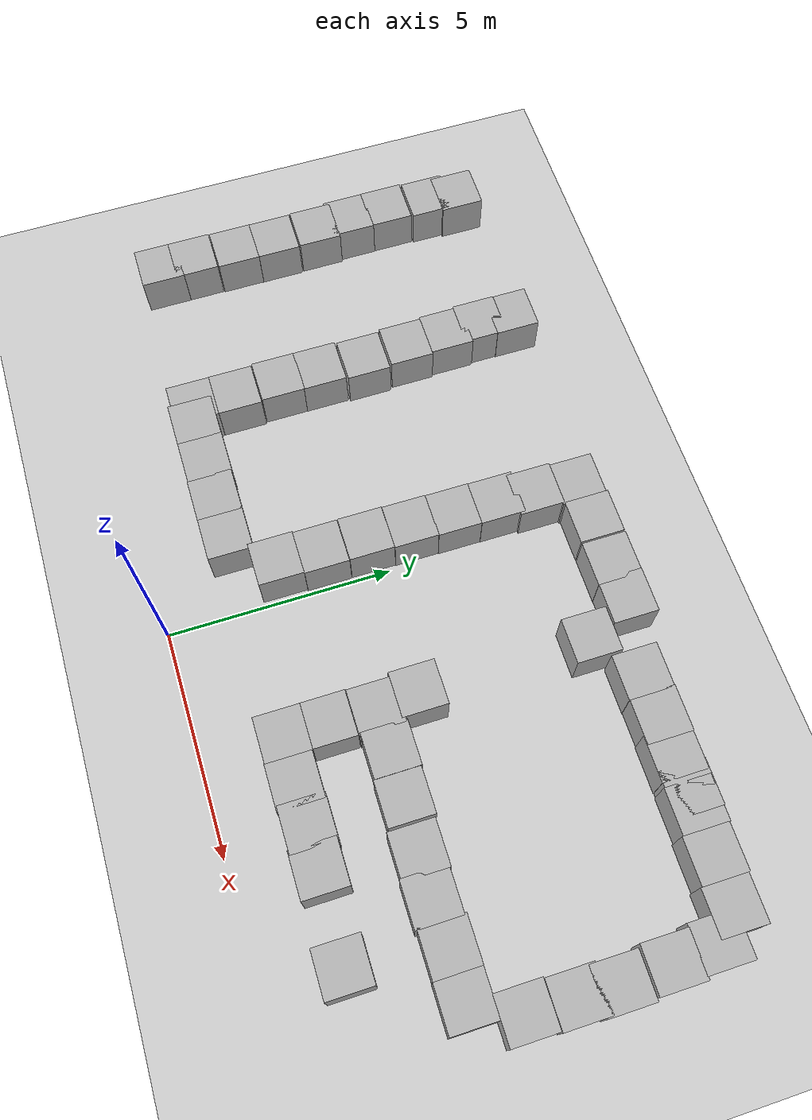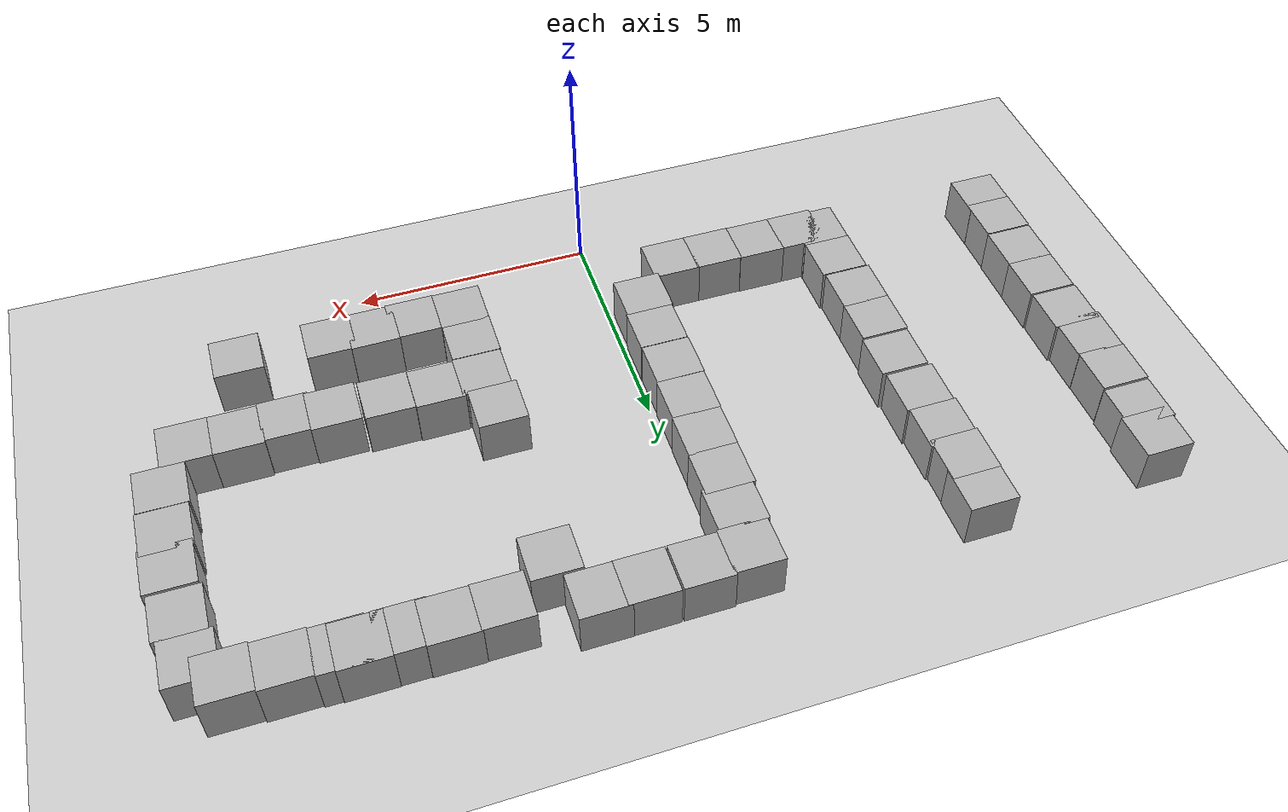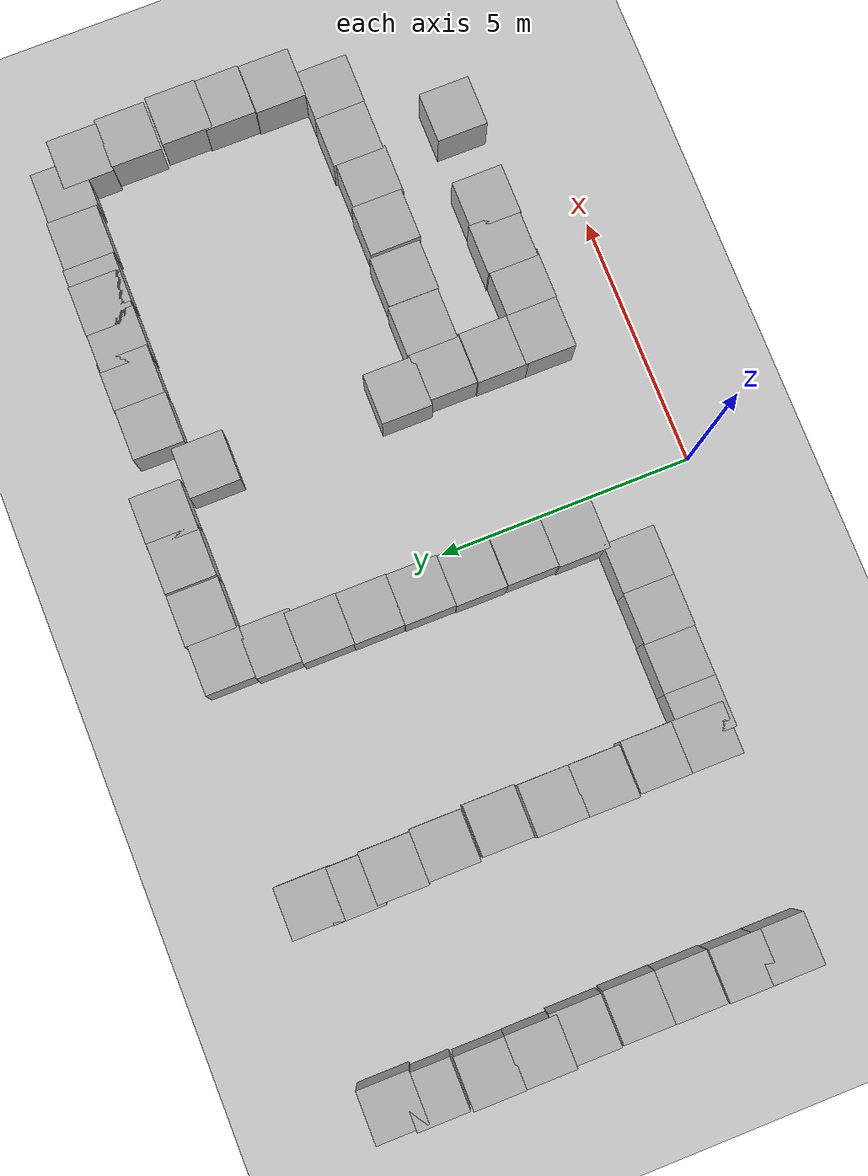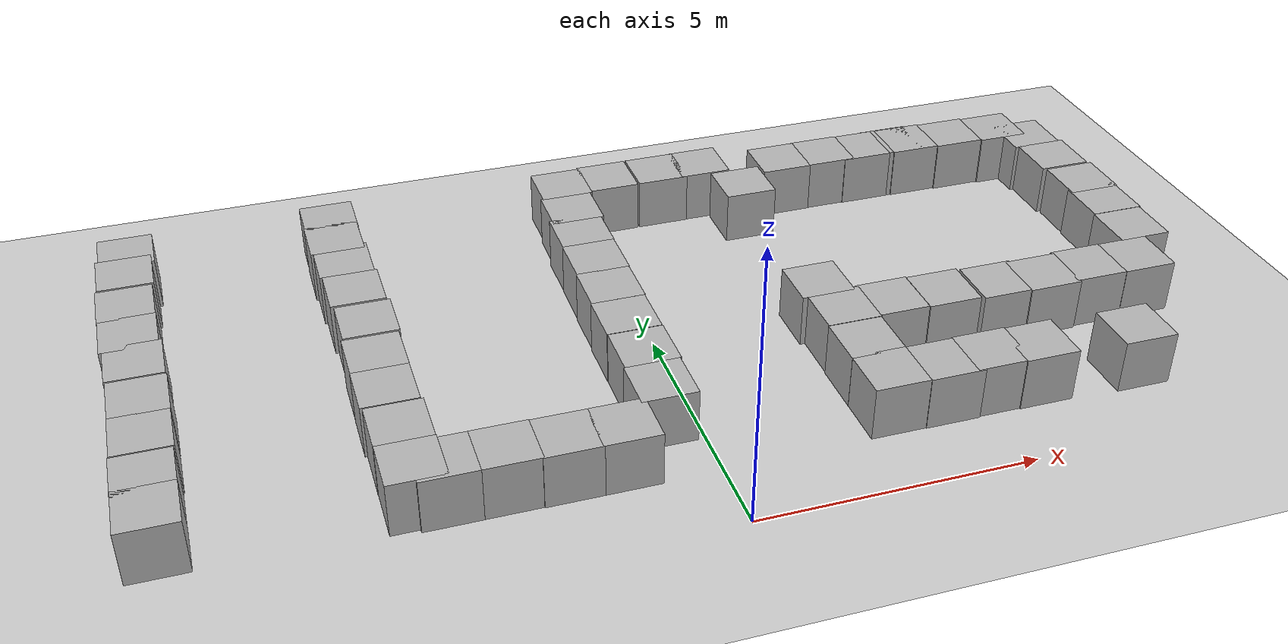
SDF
<sdf version="1.9">
 <world name="empty">
  <model name="ground_plane">
   <static>true</static>
   <link name="link">
    <collision name="collision">
     <geometry><plane><normal>0 0 1</normal><size>100 100</size></plane></geometry>
    </collision>
    <visual name="visual">
     <geometry><plane><normal>0 0 1</normal><size>100 100</size></plane></geometry>
     <material>
      <ambient>0.8 0.8 0.8 1</ambient>
      <diffuse>0.8 0.8 0.8 1</diffuse>
      <specular>0.8 0.8 0.8 1</specular>
     </material>
    </visual>
    <inertial>
     <mass>1</mass>
     <inertia><ixx>1</ixx><ixy>0</ixy><ixz>0</ixz><iyy>1</iyy><iyz>0</iyz><izz>1</izz></inertia>
    </inertial>
   </link>
  </model>
  <model name="box_3_1">
   <pose>-4.46258 1.78849 0.5 0 -0 0</pose>
   <link name="box_link">
    <inertial>
     <inertia><ixx>0.16666</ixx><ixy>0</ixy><ixz>0</ixz><iyy>0.16666</iyy><iyz>0</iyz><izz>0.16666</izz></inertia>
     <mass>1</mass>
    </inertial>
    <collision name="box_collision"><geometry><box><size>1 1 1</size></box></geometry></collision>
    <visual name="box_visual">
     <geometry><box><size>1 1 1</size></box></geometry>
     <material>
      <ambient>0.3 0.3 0.3 1</ambient>
      <diffuse>0.7 0.7 0.7 1</diffuse>
      <specular>1 1 1 1</specular>
     </material>
    </visual>
   </link>
   <static>false</static>
  </model>
  <model name="box_4">
   <pose>-3.47193 1.7902 0.5 0 -0 0</pose>
   <link name="box_link">
    <inertial>
     <inertia><ixx>0.16666</ixx><ixy>0</ixy><ixz>0</ixz><iyy>0.16666</iyy><iyz>0</iyz><izz>0.16666</izz></inertia>
     <mass>1</mass>
    </inertial>
    <collision name="box_collision"><geometry><box><size>1 1 1</size></box></geometry></collision>
    <visual name="box_visual">
     <geometry><box><size>1 1 1</size></box></geometry>
     <material>
      <ambient>0.3 0.3 0.3 1</ambient>
      <diffuse>0.7 0.7 0.7 1</diffuse>
      <specular>1 1 1 1</specular>
     </material>
    </visual>
   </link>
   <static>false</static>
  </model>
  <model name="box_5">
   <pose>-2.5012 1.77664 0.5 0 -0 0</pose>
   <link name="box_link">
    <inertial>
     <inertia><ixx>0.16666</ixx><ixy>0</ixy><ixz>0</ixz><iyy>0.16666</iyy><iyz>0</iyz><izz>0.16666</izz></inertia>
     <mass>1</mass>
    </inertial>
    <collision name="box_collision"><geometry><box><size>1 1 1</size></box></geometry></collision>
    <visual name="box_visual">
     <geometry><box><size>1 1 1</size></box></geometry>
     <material>
      <ambient>0.3 0.3 0.3 1</ambient>
      <diffuse>0.7 0.7 0.7 1</diffuse>
      <specular>1 1 1 1</specular>
     </material>
    </visual>
   </link>
   <static>false</static>
  </model>
  <model name="box_6">
   <pose>-1.52755 1.77711 0.5 0 -0 0</pose>
   <link name="box_link">
    <inertial>
     <inertia><ixx>0.16666</ixx><ixy>0</ixy><ixz>0</ixz><iyy>0.16666</iyy><iyz>0</iyz><izz>0.16666</izz></inertia>
     <mass>1</mass>
    </inertial>
    <collision name="box_collision"><geometry><box><size>1 1 1</size></box></geometry></collision>
    <visual name="box_visual">
     <geometry><box><size>1 1 1</size></box></geometry>
     <material>
      <ambient>0.3 0.3 0.3 1</ambient>
      <diffuse>0.7 0.7 0.7 1</diffuse>
      <specular>1 1 1 1</specular>
     </material>
    </visual>
   </link>
   <static>false</static>
  </model>
  <model name="box_14">
   <pose>-0.62645 2.66518 0.5 0 -0 0</pose>
   <link name="box_link">
    <inertial>
     <inertia><ixx>0.16666</ixx><ixy>0</ixy><ixz>0</ixz><iyy>0.16666</iyy><iyz>0</iyz><izz>0.16666</izz></inertia>
     <mass>1</mass>
    </inertial>
    <collision name="box_collision"><geometry><box><size>1 1 1</size></box></geometry></collision>
    <visual name="box_visual">
     <geometry><box><size>1 1 1</size></box></geometry>
     <material>
      <ambient>0.3 0.3 0.3 1</ambient>
      <diffuse>0.7 0.7 0.7 1</diffuse>
      <specular>1 1 1 1</specular>
     </material>
    </visual>
   </link>
   <static>false</static>
  </model>
  <model name="box_15">
   <pose>-0.602355 3.6627 0.5 0 -0 0</pose>
   <link name="box_link">
    <inertial>
     <inertia><ixx>0.16666</ixx><ixy>0</ixy><ixz>0</ixz><iyy>0.16666</iyy><iyz>0</iyz><izz>0.16666</izz></inertia>
     <mass>1</mass>
    </inertial>
    <collision name="box_collision"><geometry><box><size>1 1 1</size></box></geometry></collision>
    <visual name="box_visual">
     <geometry><box><size>1 1 1</size></box></geometry>
     <material>
      <ambient>0.3 0.3 0.3 1</ambient>
      <diffuse>0.7 0.7 0.7 1</diffuse>
      <specular>1 1 1 1</specular>
     </material>
    </visual>
   </link>
   <static>false</static>
  </model>
  <model name="box_16">
   <pose>-0.610927 4.67319 0.5 0 -0 0</pose>
   <link name="box_link">
    <inertial>
     <inertia><ixx>0.16666</ixx><ixy>0</ixy><ixz>0</ixz><iyy>0.16666</iyy><iyz>0</iyz><izz>0.16666</izz></inertia>
     <mass>1</mass>
    </inertial>
    <collision name="box_collision"><geometry><box><size>1 1 1</size></box></geometry></collision>
    <visual name="box_visual">
     <geometry><box><size>1 1 1</size></box></geometry>
     <material>
      <ambient>0.3 0.3 0.3 1</ambient>
      <diffuse>0.7 0.7 0.7 1</diffuse>
      <specular>1 1 1 1</specular>
     </material>
    </visual>
   </link>
   <static>false</static>
  </model>
  <model name="box_17">
   <pose>-0.595787 5.67413 0.5 0 -0 0</pose>
   <link name="box_link">
    <inertial>
     <inertia><ixx>0.16666</ixx><ixy>0</ixy><ixz>0</ixz><iyy>0.16666</iyy><iyz>0</iyz><izz>0.16666</izz></inertia>
     <mass>1</mass>
    </inertial>
    <collision name="box_collision"><geometry><box><size>1 1 1</size></box></geometry></collision>
    <visual name="box_visual">
     <geometry><box><size>1 1 1</size></box></geometry>
     <material>
      <ambient>0.3 0.3 0.3 1</ambient>
      <diffuse>0.7 0.7 0.7 1</diffuse>
      <specular>1 1 1 1</specular>
     </material>
    </visual>
   </link>
   <static>false</static>
  </model>
  <model name="box_18">
   <pose>-0.583933 6.66382 0.5 0 -0 0</pose>
   <link name="box_link">
    <inertial>
     <inertia><ixx>0.16666</ixx><ixy>0</ixy><ixz>0</ixz><iyy>0.16666</iyy><iyz>0</iyz><izz>0.16666</izz></inertia>
     <mass>1</mass>
    </inertial>
    <collision name="box_collision"><geometry><box><size>1 1 1</size></box></geometry></collision>
    <visual name="box_visual">
     <geometry><box><size>1 1 1</size></box></geometry>
     <material>
      <ambient>0.3 0.3 0.3 1</ambient>
      <diffuse>0.7 0.7 0.7 1</diffuse>
      <specular>1 1 1 1</specular>
     </material>
    </visual>
   </link>
   <static>false</static>
  </model>
  <model name="box_19">
   <pose>-0.575678 7.6423 0.5 0 -0 0</pose>
   <link name="box_link">
    <inertial>
     <inertia><ixx>0.16666</ixx><ixy>0</ixy><ixz>0</ixz><iyy>0.16666</iyy><iyz>0</iyz><izz>0.16666</izz></inertia>
     <mass>1</mass>
    </inertial>
    <collision name="box_collision"><geometry><box><size>1 1 1</size></box></geometry></collision>
    <visual name="box_visual">
     <geometry><box><size>1 1 1</size></box></geometry>
     <material>
      <ambient>0.3 0.3 0.3 1</ambient>
      <diffuse>0.7 0.7 0.7 1</diffuse>
      <specular>1 1 1 1</specular>
     </material>
    </visual>
   </link>
   <static>false</static>
  </model>
  <model name="box_27">
   <pose>3.11958 1.81014 0.5 0 -0 0</pose>
   <link name="box_link">
    <inertial>
     <inertia><ixx>0.16666</ixx><ixy>0</ixy><ixz>0</ixz><iyy>0.16666</iyy><iyz>0</iyz><izz>0.16666</izz></inertia>
     <mass>1</mass>
    </inertial>
    <collision name="box_collision"><geometry><box><size>1 1 1</size></box></geometry></collision>
    <visual name="box_visual">
     <geometry><box><size>1 1 1</size></box></geometry>
     <material>
      <ambient>0.3 0.3 0.3 1</ambient>
      <diffuse>0.7 0.7 0.7 1</diffuse>
      <specular>1 1 1 1</specular>
     </material>
    </visual>
   </link>
   <static>false</static>
  </model>
  <model name="box_28">
   <pose>3.11744 2.76434 0.5 0 -0 0</pose>
   <link name="box_link">
    <inertial>
     <inertia><ixx>0.16666</ixx><ixy>0</ixy><ixz>0</ixz><iyy>0.16666</iyy><iyz>0</iyz><izz>0.16666</izz></inertia>
     <mass>1</mass>
    </inertial>
    <collision name="box_collision"><geometry><box><size>1 1 1</size></box></geometry></collision>
    <visual name="box_visual">
     <geometry><box><size>1 1 1</size></box></geometry>
     <material>
      <ambient>0.3 0.3 0.3 1</ambient>
      <diffuse>0.7 0.7 0.7 1</diffuse>
      <specular>1 1 1 1</specular>
     </material>
    </visual>
   </link>
   <static>false</static>
  </model>
  <model name="box_29">
   <pose>3.13123 3.77565 0.5 0 -0 0</pose>
   <link name="box_link">
    <inertial>
     <inertia><ixx>0.16666</ixx><ixy>0</ixy><ixz>0</ixz><iyy>0.16666</iyy><iyz>0</iyz><izz>0.16666</izz></inertia>
     <mass>1</mass>
    </inertial>
    <collision name="box_collision"><geometry><box><size>1 1 1</size></box></geometry></collision>
    <visual name="box_visual">
     <geometry><box><size>1 1 1</size></box></geometry>
     <material>
      <ambient>0.3 0.3 0.3 1</ambient>
      <diffuse>0.7 0.7 0.7 1</diffuse>
      <specular>1 1 1 1</specular>
     </material>
    </visual>
   </link>
   <static>false</static>
  </model>
  <model name="box_30">
   <pose>3.02328 8.49449 0.5 0 -0 0</pose>
   <link name="box_link">
    <inertial>
     <inertia><ixx>0.16666</ixx><ixy>0</ixy><ixz>0</ixz><iyy>0.16666</iyy><iyz>0</iyz><izz>0.16666</izz></inertia>
     <mass>1</mass>
    </inertial>
    <collision name="box_collision"><geometry><box><size>1 1 1</size></box></geometry></collision>
    <visual name="box_visual">
     <geometry><box><size>1 1 1</size></box></geometry>
     <material>
      <ambient>0.3 0.3 0.3 1</ambient>
      <diffuse>0.7 0.7 0.7 1</diffuse>
      <specular>1 1 1 1</specular>
     </material>
    </visual>
   </link>
   <static>false</static>
  </model>
  <model name="box_31">
   <pose>-0.51947 8.52309 0.5 0 -0 0</pose>
   <link name="box_link">
    <inertial>
     <inertia><ixx>0.16666</ixx><ixy>0</ixy><ixz>0</ixz><iyy>0.16666</iyy><iyz>0</iyz><izz>0.16666</izz></inertia>
     <mass>1</mass>
    </inertial>
    <collision name="box_collision"><geometry><box><size>1 1 1</size></box></geometry></collision>
    <visual name="box_visual">
     <geometry><box><size>1 1 1</size></box></geometry>
     <material>
      <ambient>0.3 0.3 0.3 1</ambient>
      <diffuse>0.7 0.7 0.7 1</diffuse>
      <specular>1 1 1 1</specular>
     </material>
    </visual>
   </link>
   <static>false</static>
  </model>
  <model name="box_32">
   <pose>-0.473583 9.48528 0.5 0 -0 0</pose>
   <link name="box_link">
    <inertial>
     <inertia><ixx>0.16666</ixx><ixy>0</ixy><ixz>0</ixz><iyy>0.16666</iyy><iyz>0</iyz><izz>0.16666</izz></inertia>
     <mass>1</mass>
    </inertial>
    <collision name="box_collision"><geometry><box><size>1 1 1</size></box></geometry></collision>
    <visual name="box_visual">
     <geometry><box><size>1 1 1</size></box></geometry>
     <material>
      <ambient>0.3 0.3 0.3 1</ambient>
      <diffuse>0.7 0.7 0.7 1</diffuse>
      <specular>1 1 1 1</specular>
     </material>
    </visual>
   </link>
   <static>false</static>
  </model>
  <model name="box_33">
   <pose>0.491718 9.52437 0.5 0 -0 0</pose>
   <link name="box_link">
    <inertial>
     <inertia><ixx>0.16666</ixx><ixy>0</ixy><ixz>0</ixz><iyy>0.16666</iyy><iyz>0</iyz><izz>0.16666</izz></inertia>
     <mass>1</mass>
    </inertial>
    <collision name="box_collision"><geometry><box><size>1 1 1</size></box></geometry></collision>
    <visual name="box_visual">
     <geometry><box><size>1 1 1</size></box></geometry>
     <material>
      <ambient>0.3 0.3 0.3 1</ambient>
      <diffuse>0.7 0.7 0.7 1</diffuse>
      <specular>1 1 1 1</specular>
     </material>
    </visual>
   </link>
   <static>false</static>
  </model>
  <model name="box_34">
   <pose>1.52596 9.52964 0.5 0 -0 0</pose>
   <link name="box_link">
    <inertial>
     <inertia><ixx>0.16666</ixx><ixy>0</ixy><ixz>0</ixz><iyy>0.16666</iyy><iyz>0</iyz><izz>0.16666</izz></inertia>
     <mass>1</mass>
    </inertial>
    <collision name="box_collision"><geometry><box><size>1 1 1</size></box></geometry></collision>
    <visual name="box_visual">
     <geometry><box><size>1 1 1</size></box></geometry>
     <material>
      <ambient>0.3 0.3 0.3 1</ambient>
      <diffuse>0.7 0.7 0.7 1</diffuse>
      <specular>1 1 1 1</specular>
     </material>
    </visual>
   </link>
   <static>false</static>
  </model>
  <model name="box_35">
   <pose>2.43308 9.5376 0.5 0 -0 0</pose>
   <link name="box_link">
    <inertial>
     <inertia><ixx>0.16666</ixx><ixy>0</ixy><ixz>0</ixz><iyy>0.16666</iyy><iyz>0</iyz><izz>0.16666</izz></inertia>
     <mass>1</mass>
    </inertial>
    <collision name="box_collision"><geometry><box><size>1 1 1</size></box></geometry></collision>
    <visual name="box_visual">
     <geometry><box><size>1 1 1</size></box></geometry>
     <material>
      <ambient>0.3 0.3 0.3 1</ambient>
      <diffuse>0.7 0.7 0.7 1</diffuse>
      <specular>1 1 1 1</specular>
     </material>
    </visual>
   </link>
   <static>false</static>
  </model>
  <model name="box_53">
   <pose>4.11919 1.79761 0.5 0 -0 0</pose>
   <link name="box_link">
    <inertial>
     <inertia><ixx>0.16666</ixx><ixy>0</ixy><ixz>0</ixz><iyy>0.16666</iyy><iyz>0</iyz><izz>0.16666</izz></inertia>
     <mass>1</mass>
    </inertial>
    <collision name="box_collision"><geometry><box><size>1 1 1</size></box></geometry></collision>
    <visual name="box_visual">
     <geometry><box><size>1 1 1</size></box></geometry>
     <material>
      <ambient>0.3 0.3 0.3 1</ambient>
      <diffuse>0.7 0.7 0.7 1</diffuse>
      <specular>1 1 1 1</specular>
     </material>
    </visual>
   </link>
   <static>false</static>
  </model>
  <model name="box_54">
   <pose>4.99012 1.81929 0.5 0 -0 0</pose>
   <link name="box_link">
    <inertial>
     <inertia><ixx>0.16666</ixx><ixy>0</ixy><ixz>0</ixz><iyy>0.16666</iyy><iyz>0</iyz><izz>0.16666</izz></inertia>
     <mass>1</mass>
    </inertial>
    <collision name="box_collision"><geometry><box><size>1 1 1</size></box></geometry></collision>
    <visual name="box_visual">
     <geometry><box><size>1 1 1</size></box></geometry>
     <material>
      <ambient>0.3 0.3 0.3 1</ambient>
      <diffuse>0.7 0.7 0.7 1</diffuse>
      <specular>1 1 1 1</specular>
     </material>
    </visual>
   </link>
   <static>false</static>
  </model>
  <model name="box_55">
   <pose>5.88812 1.79879 0.5 0 -0 0</pose>
   <link name="box_link">
    <inertial>
     <inertia><ixx>0.16666</ixx><ixy>0</ixy><ixz>0</ixz><iyy>0.16666</iyy><iyz>0</iyz><izz>0.16666</izz></inertia>
     <mass>1</mass>
    </inertial>
    <collision name="box_collision"><geometry><box><size>1 1 1</size></box></geometry></collision>
    <visual name="box_visual">
     <geometry><box><size>1 1 1</size></box></geometry>
     <material>
      <ambient>0.3 0.3 0.3 1</ambient>
      <diffuse>0.7 0.7 0.7 1</diffuse>
      <specular>1 1 1 1</specular>
     </material>
    </visual>
   </link>
   <static>false</static>
  </model>
  <model name="box_57">
   <pose>7.74781 1.736 0.5 0 -0 0</pose>
   <link name="box_link">
    <inertial>
     <inertia><ixx>0.16666</ixx><ixy>0</ixy><ixz>0</ixz><iyy>0.16666</iyy><iyz>0</iyz><izz>0.16666</izz></inertia>
     <mass>1</mass>
    </inertial>
    <collision name="box_collision"><geometry><box><size>1 1 1</size></box></geometry></collision>
    <visual name="box_visual">
     <geometry><box><size>1 1 1</size></box></geometry>
     <material>
      <ambient>0.3 0.3 0.3 1</ambient>
      <diffuse>0.7 0.7 0.7 1</diffuse>
      <specular>1 1 1 1</specular>
     </material>
    </visual>
   </link>
   <static>false</static>
  </model>
  <model name="box_63">
   <pose>4.07342 3.80274 0.5 0 -0 0</pose>
   <link name="box_link">
    <inertial>
     <inertia><ixx>0.16666</ixx><ixy>0</ixy><ixz>0</ixz><iyy>0.16666</iyy><iyz>0</iyz><izz>0.16666</izz></inertia>
     <mass>1</mass>
    </inertial>
    <collision name="box_collision"><geometry><box><size>1 1 1</size></box></geometry></collision>
    <visual name="box_visual">
     <geometry><box><size>1 1 1</size></box></geometry>
     <material>
      <ambient>0.3 0.3 0.3 1</ambient>
      <diffuse>0.7 0.7 0.7 1</diffuse>
      <specular>1 1 1 1</specular>
     </material>
    </visual>
   </link>
   <static>false</static>
  </model>
  <model name="box_64">
   <pose>5.07651 3.77821 0.5 0 -0 0</pose>
   <link name="box_link">
    <inertial>
     <inertia><ixx>0.16666</ixx><ixy>0</ixy><ixz>0</ixz><iyy>0.16666</iyy><iyz>0</iyz><izz>0.16666</izz></inertia>
     <mass>1</mass>
    </inertial>
    <collision name="box_collision"><geometry><box><size>1 1 1</size></box></geometry></collision>
    <visual name="box_visual">
     <geometry><box><size>1 1 1</size></box></geometry>
     <material>
      <ambient>0.3 0.3 0.3 1</ambient>
      <diffuse>0.7 0.7 0.7 1</diffuse>
      <specular>1 1 1 1</specular>
     </material>
    </visual>
   </link>
   <static>false</static>
  </model>
  <model name="box_65">
   <pose>4.07663 9.21213 0.5 0 -0 0</pose>
   <link name="box_link">
    <inertial>
     <inertia><ixx>0.16666</ixx><ixy>0</ixy><ixz>0</ixz><iyy>0.16666</iyy><iyz>0</iyz><izz>0.16666</izz></inertia>
     <mass>1</mass>
    </inertial>
    <collision name="box_collision"><geometry><box><size>1 1 1</size></box></geometry></collision>
    <visual name="box_visual">
     <geometry><box><size>1 1 1</size></box></geometry>
     <material>
      <ambient>0.3 0.3 0.3 1</ambient>
      <diffuse>0.7 0.7 0.7 1</diffuse>
      <specular>1 1 1 1</specular>
     </material>
    </visual>
   </link>
   <static>false</static>
  </model>
  <model name="box_66">
   <pose>5.04602 9.2236 0.5 0 -0 0</pose>
   <link name="box_link">
    <inertial>
     <inertia><ixx>0.16666</ixx><ixy>0</ixy><ixz>0</ixz><iyy>0.16666</iyy><iyz>0</iyz><izz>0.16666</izz></inertia>
     <mass>1</mass>
    </inertial>
    <collision name="box_collision"><geometry><box><size>1 1 1</size></box></geometry></collision>
    <visual name="box_visual">
     <geometry><box><size>1 1 1</size></box></geometry>
     <material>
      <ambient>0.3 0.3 0.3 1</ambient>
      <diffuse>0.7 0.7 0.7 1</diffuse>
      <specular>1 1 1 1</specular>
     </material>
    </visual>
   </link>
   <static>false</static>
  </model>
  <model name="box_67">
   <pose>5.84829 9.2067 0.5 0 -0 0</pose>
   <link name="box_link">
    <inertial>
     <inertia><ixx>0.16666</ixx><ixy>0</ixy><ixz>0</ixz><iyy>0.16666</iyy><iyz>0</iyz><izz>0.16666</izz></inertia>
     <mass>1</mass>
    </inertial>
    <collision name="box_collision"><geometry><box><size>1 1 1</size></box></geometry></collision>
    <visual name="box_visual">
     <geometry><box><size>1 1 1</size></box></geometry>
     <material>
      <ambient>0.3 0.3 0.3 1</ambient>
      <diffuse>0.7 0.7 0.7 1</diffuse>
      <specular>1 1 1 1</specular>
     </material>
    </visual>
   </link>
   <static>false</static>
  </model>
  <model name="box_68">
   <pose>6.12743 3.73131 0.5 0 -0 0</pose>
   <link name="box_link">
    <inertial>
     <inertia><ixx>0.16666</ixx><ixy>0</ixy><ixz>0</ixz><iyy>0.16666</iyy><iyz>0</iyz><izz>0.16666</izz></inertia>
     <mass>1</mass>
    </inertial>
    <collision name="box_collision"><geometry><box><size>1 1 1</size></box></geometry></collision>
    <visual name="box_visual">
     <geometry><box><size>1 1 1</size></box></geometry>
     <material>
      <ambient>0.3 0.3 0.3 1</ambient>
      <diffuse>0.7 0.7 0.7 1</diffuse>
      <specular>1 1 1 1</specular>
     </material>
    </visual>
   </link>
   <static>false</static>
  </model>
  <model name="box_74">
   <pose>3.03646 4.70592 0.5 0 -0 0</pose>
   <link name="box_link">
    <inertial>
     <inertia><ixx>0.16666</ixx><ixy>0</ixy><ixz>0</ixz><iyy>0.16666</iyy><iyz>0</iyz><izz>0.16666</izz></inertia>
     <mass>1</mass>
    </inertial>
    <collision name="box_collision"><geometry><box><size>1 1 1</size></box></geometry></collision>
    <visual name="box_visual">
     <geometry><box><size>1 1 1</size></box></geometry>
     <material>
      <ambient>0.3 0.3 0.3 1</ambient>
      <diffuse>0.7 0.7 0.7 1</diffuse>
      <specular>1 1 1 1</specular>
     </material>
    </visual>
   </link>
   <static>false</static>
  </model>
  <model name="box_92">
   <pose>-8.89599 1.97063 0.5 0 -0 0</pose>
   <link name="box_link">
    <inertial>
     <inertia><ixx>0.16666</ixx><ixy>0</ixy><ixz>0</ixz><iyy>0.16666</iyy><iyz>0</iyz><izz>0.16666</izz></inertia>
     <mass>1</mass>
    </inertial>
    <collision name="box_collision"><geometry><box><size>1 1 1</size></box></geometry></collision>
    <visual name="box_visual">
     <geometry><box><size>1 1 1</size></box></geometry>
     <material>
      <ambient>0.3 0.3 0.3 1</ambient>
      <diffuse>0.7 0.7 0.7 1</diffuse>
      <specular>1 1 1 1</specular>
     </material>
    </visual>
   </link>
   <static>false</static>
  </model>
  <model name="box_94">
   <pose>-8.89948 2.79692 0.5 0 -0 0</pose>
   <link name="box_link">
    <inertial>
     <inertia><ixx>0.16666</ixx><ixy>0</ixy><ixz>0</ixz><iyy>0.16666</iyy><iyz>0</iyz><izz>0.16666</izz></inertia>
     <mass>1</mass>
    </inertial>
    <collision name="box_collision"><geometry><box><size>1 1 1</size></box></geometry></collision>
    <visual name="box_visual">
     <geometry><box><size>1 1 1</size></box></geometry>
     <material>
      <ambient>0.3 0.3 0.3 1</ambient>
      <diffuse>0.7 0.7 0.7 1</diffuse>
      <specular>1 1 1 1</specular>
     </material>
    </visual>
   </link>
   <static>false</static>
  </model>
  <model name="box_95">
   <pose>-8.88233 3.82175 0.5 0 -0 0</pose>
   <link name="box_link">
    <inertial>
     <inertia><ixx>0.16666</ixx><ixy>0</ixy><ixz>0</ixz><iyy>0.16666</iyy><iyz>0</iyz><izz>0.16666</izz></inertia>
     <mass>1</mass>
    </inertial>
    <collision name="box_collision"><geometry><box><size>1 1 1</size></box></geometry></collision>
    <visual name="box_visual">
     <geometry><box><size>1 1 1</size></box></geometry>
     <material>
      <ambient>0.3 0.3 0.3 1</ambient>
      <diffuse>0.7 0.7 0.7 1</diffuse>
      <specular>1 1 1 1</specular>
     </material>
    </visual>
   </link>
   <static>false</static>
  </model>
  <model name="box_96">
   <pose>-8.87705 4.81154 0.5 0 -0 0</pose>
   <link name="box_link">
    <inertial>
     <inertia><ixx>0.16666</ixx><ixy>0</ixy><ixz>0</ixz><iyy>0.16666</iyy><iyz>0</iyz><izz>0.16666</izz></inertia>
     <mass>1</mass>
    </inertial>
    <collision name="box_collision"><geometry><box><size>1 1 1</size></box></geometry></collision>
    <visual name="box_visual">
     <geometry><box><size>1 1 1</size></box></geometry>
     <material>
      <ambient>0.3 0.3 0.3 1</ambient>
      <diffuse>0.7 0.7 0.7 1</diffuse>
      <specular>1 1 1 1</specular>
     </material>
    </visual>
   </link>
   <static>false</static>
  </model>
  <model name="box_97">
   <pose>-8.89745 5.84189 0.5 0 -0 0</pose>
   <link name="box_link">
    <inertial>
     <inertia><ixx>0.16666</ixx><ixy>0</ixy><ixz>0</ixz><iyy>0.16666</iyy><iyz>0</iyz><izz>0.16666</izz></inertia>
     <mass>1</mass>
    </inertial>
    <collision name="box_collision"><geometry><box><size>1 1 1</size></box></geometry></collision>
    <visual name="box_visual">
     <geometry><box><size>1 1 1</size></box></geometry>
     <material>
      <ambient>0.3 0.3 0.3 1</ambient>
      <diffuse>0.7 0.7 0.7 1</diffuse>
      <specular>1 1 1 1</specular>
     </material>
    </visual>
   </link>
   <static>false</static>
  </model>
  <model name="box_98">
   <pose>-8.95099 6.70426 0.5 0 -0 0</pose>
   <link name="box_link">
    <inertial>
     <inertia><ixx>0.16666</ixx><ixy>0</ixy><ixz>0</ixz><iyy>0.16666</iyy><iyz>0</iyz><izz>0.16666</izz></inertia>
     <mass>1</mass>
    </inertial>
    <collision name="box_collision"><geometry><box><size>1 1 1</size></box></geometry></collision>
    <visual name="box_visual">
     <geometry><box><size>1 1 1</size></box></geometry>
     <material>
      <ambient>0.3 0.3 0.3 1</ambient>
      <diffuse>0.7 0.7 0.7 1</diffuse>
      <specular>1 1 1 1</specular>
     </material>
    </visual>
   </link>
   <static>false</static>
  </model>
  <model name="box_99">
   <pose>-8.95961 7.66721 0.5 0 -0 0</pose>
   <link name="box_link">
    <inertial>
     <inertia><ixx>0.16666</ixx><ixy>0</ixy><ixz>0</ixz><iyy>0.16666</iyy><iyz>0</iyz><izz>0.16666</izz></inertia>
     <mass>1</mass>
    </inertial>
    <collision name="box_collision"><geometry><box><size>1 1 1</size></box></geometry></collision>
    <visual name="box_visual">
     <geometry><box><size>1 1 1</size></box></geometry>
     <material>
      <ambient>0.3 0.3 0.3 1</ambient>
      <diffuse>0.7 0.7 0.7 1</diffuse>
      <specular>1 1 1 1</specular>
     </material>
    </visual>
   </link>
   <static>false</static>
  </model>
  <model name="box_100">
   <pose>-8.929 8.71134 0.5 0 -0 0</pose>
   <link name="box_link">
    <inertial>
     <inertia><ixx>0.16666</ixx><ixy>0</ixy><ixz>0</ixz><iyy>0.16666</iyy><iyz>0</iyz><izz>0.16666</izz></inertia>
     <mass>1</mass>
    </inertial>
    <collision name="box_collision"><geometry><box><size>1 1 1</size></box></geometry></collision>
    <visual name="box_visual">
     <geometry><box><size>1 1 1</size></box></geometry>
     <material>
      <ambient>0.3 0.3 0.3 1</ambient>
      <diffuse>0.7 0.7 0.7 1</diffuse>
      <specular>1 1 1 1</specular>
     </material>
    </visual>
   </link>
   <static>false</static>
  </model>
  <model name="box_101">
   <pose>-8.87587 9.4607 0.5 0 -0 0</pose>
   <link name="box_link">
    <inertial>
     <inertia><ixx>0.16666</ixx><ixy>0</ixy><ixz>0</ixz><iyy>0.16666</iyy><iyz>0</iyz><izz>0.16666</izz></inertia>
     <mass>1</mass>
    </inertial>
    <collision name="box_collision"><geometry><box><size>1 1 1</size></box></geometry></collision>
    <visual name="box_visual">
     <geometry><box><size>1 1 1</size></box></geometry>
     <material>
      <ambient>0.3 0.3 0.3 1</ambient>
      <diffuse>0.7 0.7 0.7 1</diffuse>
      <specular>1 1 1 1</specular>
     </material>
    </visual>
   </link>
   <static>false</static>
  </model>
  <model name="box_102">
   <pose>-4.94951 1.85642 0.5 0 -0 0</pose>
   <link name="box_link">
    <inertial>
     <inertia><ixx>0.16666</ixx><ixy>0</ixy><ixz>0</ixz><iyy>0.16666</iyy><iyz>0</iyz><izz>0.16666</izz></inertia>
     <mass>1</mass>
    </inertial>
    <collision name="box_collision"><geometry><box><size>1 1 1</size></box></geometry></collision>
    <visual name="box_visual">
     <geometry><box><size>1 1 1</size></box></geometry>
     <material>
      <ambient>0.3 0.3 0.3 1</ambient>
      <diffuse>0.7 0.7 0.7 1</diffuse>
      <specular>1 1 1 1</specular>
     </material>
    </visual>
   </link>
   <static>false</static>
  </model>
  <model name="box_103">
   <pose>-4.954 2.85541 0.5 0 -0 0</pose>
   <link name="box_link">
    <inertial>
     <inertia><ixx>0.16666</ixx><ixy>0</ixy><ixz>0</ixz><iyy>0.16666</iyy><iyz>0</iyz><izz>0.16666</izz></inertia>
     <mass>1</mass>
    </inertial>
    <collision name="box_collision"><geometry><box><size>1 1 1</size></box></geometry></collision>
    <visual name="box_visual">
     <geometry><box><size>1 1 1</size></box></geometry>
     <material>
      <ambient>0.3 0.3 0.3 1</ambient>
      <diffuse>0.7 0.7 0.7 1</diffuse>
      <specular>1 1 1 1</specular>
     </material>
    </visual>
   </link>
   <static>false</static>
  </model>
  <model name="box_104">
   <pose>-4.99587 3.87829 0.5 0 -0 0</pose>
   <link name="box_link">
    <inertial>
     <inertia><ixx>0.16666</ixx><ixy>0</ixy><ixz>0</ixz><iyy>0.16666</iyy><iyz>0</iyz><izz>0.16666</izz></inertia>
     <mass>1</mass>
    </inertial>
    <collision name="box_collision"><geometry><box><size>1 1 1</size></box></geometry></collision>
    <visual name="box_visual">
     <geometry><box><size>1 1 1</size></box></geometry>
     <material>
      <ambient>0.3 0.3 0.3 1</ambient>
      <diffuse>0.7 0.7 0.7 1</diffuse>
      <specular>1 1 1 1</specular>
     </material>
    </visual>
   </link>
   <static>false</static>
  </model>
  <model name="box_105">
   <pose>-4.99324 4.86255 0.5 0 -0 0</pose>
   <link name="box_link">
    <inertial>
     <inertia><ixx>0.16666</ixx><ixy>0</ixy><ixz>0</ixz><iyy>0.16666</iyy><iyz>0</iyz><izz>0.16666</izz></inertia>
     <mass>1</mass>
    </inertial>
    <collision name="box_collision"><geometry><box><size>1 1 1</size></box></geometry></collision>
    <visual name="box_visual">
     <geometry><box><size>1 1 1</size></box></geometry>
     <material>
      <ambient>0.3 0.3 0.3 1</ambient>
      <diffuse>0.7 0.7 0.7 1</diffuse>
      <specular>1 1 1 1</specular>
     </material>
    </visual>
   </link>
   <static>false</static>
  </model>
  <model name="box_106">
   <pose>-4.95926 5.9046 0.5 0 -0 0</pose>
   <link name="box_link">
    <inertial>
     <inertia><ixx>0.16666</ixx><ixy>0</ixy><ixz>0</ixz><iyy>0.16666</iyy><iyz>0</iyz><izz>0.16666</izz></inertia>
     <mass>1</mass>
    </inertial>
    <collision name="box_collision"><geometry><box><size>1 1 1</size></box></geometry></collision>
    <visual name="box_visual">
     <geometry><box><size>1 1 1</size></box></geometry>
     <material>
      <ambient>0.3 0.3 0.3 1</ambient>
      <diffuse>0.7 0.7 0.7 1</diffuse>
      <specular>1 1 1 1</specular>
     </material>
    </visual>
   </link>
   <static>false</static>
  </model>
  <model name="box_107">
   <pose>-5.01547 6.95279 0.5 0 -0 0</pose>
   <link name="box_link">
    <inertial>
     <inertia><ixx>0.16666</ixx><ixy>0</ixy><ixz>0</ixz><iyy>0.16666</iyy><iyz>0</iyz><izz>0.16666</izz></inertia>
     <mass>1</mass>
    </inertial>
    <collision name="box_collision"><geometry><box><size>1 1 1</size></box></geometry></collision>
    <visual name="box_visual">
     <geometry><box><size>1 1 1</size></box></geometry>
     <material>
      <ambient>0.3 0.3 0.3 1</ambient>
      <diffuse>0.7 0.7 0.7 1</diffuse>
      <specular>1 1 1 1</specular>
     </material>
    </visual>
   </link>
   <static>false</static>
  </model>
  <model name="box_108">
   <pose>-5.05911 7.94946 0.5 0 -0 0</pose>
   <link name="box_link">
    <inertial>
     <inertia><ixx>0.16666</ixx><ixy>0</ixy><ixz>0</ixz><iyy>0.16666</iyy><iyz>0</iyz><izz>0.16666</izz></inertia>
     <mass>1</mass>
    </inertial>
    <collision name="box_collision"><geometry><box><size>1 1 1</size></box></geometry></collision>
    <visual name="box_visual">
     <geometry><box><size>1 1 1</size></box></geometry>
     <material>
      <ambient>0.3 0.3 0.3 1</ambient>
      <diffuse>0.7 0.7 0.7 1</diffuse>
      <specular>1 1 1 1</specular>
     </material>
    </visual>
   </link>
   <static>false</static>
  </model>
  <model name="box_109">
   <pose>-5.10282 8.78872 0.5 0 -0 0</pose>
   <link name="box_link">
    <inertial>
     <inertia><ixx>0.16666</ixx><ixy>0</ixy><ixz>0</ixz><iyy>0.16666</iyy><iyz>0</iyz><izz>0.16666</izz></inertia>
     <mass>1</mass>
    </inertial>
    <collision name="box_collision"><geometry><box><size>1 1 1</size></box></geometry></collision>
    <visual name="box_visual">
     <geometry><box><size>1 1 1</size></box></geometry>
     <material>
      <ambient>0.3 0.3 0.3 1</ambient>
      <diffuse>0.7 0.7 0.7 1</diffuse>
      <specular>1 1 1 1</specular>
     </material>
    </visual>
   </link>
   <static>false</static>
  </model>
  <model name="box_110">
   <pose>-5.09021 9.56856 0.5 0 -0 0</pose>
   <link name="box_link">
    <inertial>
     <inertia><ixx>0.16666</ixx><ixy>0</ixy><ixz>0</ixz><iyy>0.16666</iyy><iyz>0</iyz><izz>0.16666</izz></inertia>
     <mass>1</mass>
    </inertial>
    <collision name="box_collision"><geometry><box><size>1 1 1</size></box></geometry></collision>
    <visual name="box_visual">
     <geometry><box><size>1 1 1</size></box></geometry>
     <material>
      <ambient>0.3 0.3 0.3 1</ambient>
      <diffuse>0.7 0.7 0.7 1</diffuse>
      <specular>1 1 1 1</specular>
     </material>
    </visual>
   </link>
   <static>false</static>
  </model>
  <model name="box_69">
   <pose>7.04615 3.70314 0.5 0 -0 0</pose>
   <link name="box_link">
    <inertial>
     <inertia><ixx>0.16666</ixx><ixy>0</ixy><ixz>0</ixz><iyy>0.16666</iyy><iyz>0</iyz><izz>0.16666</izz></inertia>
     <mass>1</mass>
    </inertial>
    <collision name="box_collision"><geometry><box><size>1 1 1</size></box></geometry></collision>
    <visual name="box_visual">
     <geometry><box><size>1 1 1</size></box></geometry>
     <material>
      <ambient>0.3 0.3 0.3 1</ambient>
      <diffuse>0.7 0.7 0.7 1</diffuse>
      <specular>1 1 1 1</specular>
     </material>
    </visual>
   </link>
   <static>false</static>
  </model>
  <model name="box_70">
   <pose>8.00847 3.74843 0.5 0 -0 0</pose>
   <link name="box_link">
    <inertial>
     <inertia><ixx>0.16666</ixx><ixy>0</ixy><ixz>0</ixz><iyy>0.16666</iyy><iyz>0</iyz><izz>0.16666</izz></inertia>
     <mass>1</mass>
    </inertial>
    <collision name="box_collision"><geometry><box><size>1 1 1</size></box></geometry></collision>
    <visual name="box_visual">
     <geometry><box><size>1 1 1</size></box></geometry>
     <material>
      <ambient>0.3 0.3 0.3 1</ambient>
      <diffuse>0.7 0.7 0.7 1</diffuse>
      <specular>1 1 1 1</specular>
     </material>
    </visual>
   </link>
   <static>false</static>
  </model>
  <model name="box_71">
   <pose>9.00608 3.74143 0.5 0 -0 0</pose>
   <link name="box_link">
    <inertial>
     <inertia><ixx>0.16666</ixx><ixy>0</ixy><ixz>0</ixz><iyy>0.16666</iyy><iyz>0</iyz><izz>0.16666</izz></inertia>
     <mass>1</mass>
    </inertial>
    <collision name="box_collision"><geometry><box><size>1 1 1</size></box></geometry></collision>
    <visual name="box_visual">
     <geometry><box><size>1 1 1</size></box></geometry>
     <material>
      <ambient>0.3 0.3 0.3 1</ambient>
      <diffuse>0.7 0.7 0.7 1</diffuse>
      <specular>1 1 1 1</specular>
     </material>
    </visual>
   </link>
   <static>false</static>
  </model>
  <model name="box_72">
   <pose>6.94637 9.19798 0.5 0 -0 0</pose>
   <link name="box_link">
    <inertial>
     <inertia><ixx>0.16666</ixx><ixy>0</ixy><ixz>0</ixz><iyy>0.16666</iyy><iyz>0</iyz><izz>0.16666</izz></inertia>
     <mass>1</mass>
    </inertial>
    <collision name="box_collision"><geometry><box><size>1 1 1</size></box></geometry></collision>
    <visual name="box_visual">
     <geometry><box><size>1 1 1</size></box></geometry>
     <material>
      <ambient>0.3 0.3 0.3 1</ambient>
      <diffuse>0.7 0.7 0.7 1</diffuse>
      <specular>1 1 1 1</specular>
     </material>
    </visual>
   </link>
   <static>false</static>
  </model>
  <model name="box_73">
   <pose>6.60719 9.21724 0.5 0 -0 0</pose>
   <link name="box_link">
    <inertial>
     <inertia><ixx>0.16666</ixx><ixy>0</ixy><ixz>0</ixz><iyy>0.16666</iyy><iyz>0</iyz><izz>0.16666</izz></inertia>
     <mass>1</mass>
    </inertial>
    <collision name="box_collision"><geometry><box><size>1 1 1</size></box></geometry></collision>
    <visual name="box_visual">
     <geometry><box><size>1 1 1</size></box></geometry>
     <material>
      <ambient>0.3 0.3 0.3 1</ambient>
      <diffuse>0.7 0.7 0.7 1</diffuse>
      <specular>1 1 1 1</specular>
     </material>
    </visual>
   </link>
   <static>false</static>
  </model>
  <model name="box_111">
   <pose>7.92932 9.17128 0.5 0 -0 0</pose>
   <link name="box_link">
    <inertial>
     <inertia><ixx>0.16666</ixx><ixy>0</ixy><ixz>0</ixz><iyy>0.16666</iyy><iyz>0</iyz><izz>0.16666</izz></inertia>
     <mass>1</mass>
    </inertial>
    <collision name="box_collision"><geometry><box><size>1 1 1</size></box></geometry></collision>
    <visual name="box_visual">
     <geometry><box><size>1 1 1</size></box></geometry>
     <material>
      <ambient>0.3 0.3 0.3 1</ambient>
      <diffuse>0.7 0.7 0.7 1</diffuse>
      <specular>1 1 1 1</specular>
     </material>
    </visual>
   </link>
   <static>false</static>
  </model>
  <model name="box_112">
   <pose>8.92896 9.13725 0.5 0 -0 0</pose>
   <link name="box_link">
    <inertial>
     <inertia><ixx>0.16666</ixx><ixy>0</ixy><ixz>0</ixz><iyy>0.16666</iyy><iyz>0</iyz><izz>0.16666</izz></inertia>
     <mass>1</mass>
    </inertial>
    <collision name="box_collision"><geometry><box><size>1 1 1</size></box></geometry></collision>
    <visual name="box_visual">
     <geometry><box><size>1 1 1</size></box></geometry>
     <material>
      <ambient>0.3 0.3 0.3 1</ambient>
      <diffuse>0.7 0.7 0.7 1</diffuse>
      <specular>1 1 1 1</specular>
     </material>
    </visual>
   </link>
   <static>false</static>
  </model>
  <model name="box_113">
   <pose>9.52629 4.7327 0.5 0 -0 0</pose>
   <link name="box_link">
    <inertial>
     <inertia><ixx>0.16666</ixx><ixy>0</ixy><ixz>0</ixz><iyy>0.16666</iyy><iyz>0</iyz><izz>0.16666</izz></inertia>
     <mass>1</mass>
    </inertial>
    <collision name="box_collision"><geometry><box><size>1 1 1</size></box></geometry></collision>
    <visual name="box_visual">
     <geometry><box><size>1 1 1</size></box></geometry>
     <material>
      <ambient>0.3 0.3 0.3 1</ambient>
      <diffuse>0.7 0.7 0.7 1</diffuse>
      <specular>1 1 1 1</specular>
     </material>
    </visual>
   </link>
   <static>false</static>
  </model>
  <model name="box_114">
   <pose>9.5549 5.74005 0.5 0 -0 0</pose>
   <link name="box_link">
    <inertial>
     <inertia><ixx>0.16666</ixx><ixy>0</ixy><ixz>0</ixz><iyy>0.16666</iyy><iyz>0</iyz><izz>0.16666</izz></inertia>
     <mass>1</mass>
    </inertial>
    <collision name="box_collision"><geometry><box><size>1 1 1</size></box></geometry></collision>
    <visual name="box_visual">
     <geometry><box><size>1 1 1</size></box></geometry>
     <material>
      <ambient>0.3 0.3 0.3 1</ambient>
      <diffuse>0.7 0.7 0.7 1</diffuse>
      <specular>1 1 1 1</specular>
     </material>
    </visual>
   </link>
   <static>false</static>
  </model>
  <model name="box_115">
   <pose>9.58222 6.60659 0.5 0 -0 0</pose>
   <link name="box_link">
    <inertial>
     <inertia><ixx>0.16666</ixx><ixy>0</ixy><ixz>0</ixz><iyy>0.16666</iyy><iyz>0</iyz><izz>0.16666</izz></inertia>
     <mass>1</mass>
    </inertial>
    <collision name="box_collision"><geometry><box><size>1 1 1</size></box></geometry></collision>
    <visual name="box_visual">
     <geometry><box><size>1 1 1</size></box></geometry>
     <material>
      <ambient>0.3 0.3 0.3 1</ambient>
      <diffuse>0.7 0.7 0.7 1</diffuse>
      <specular>1 1 1 1</specular>
     </material>
    </visual>
   </link>
   <static>false</static>
  </model>
  <model name="box_116">
   <pose>9.52122 7.65146 0.5 0 -0 0</pose>
   <link name="box_link">
    <inertial>
     <inertia><ixx>0.16666</ixx><ixy>0</ixy><ixz>0</ixz><iyy>0.16666</iyy><iyz>0</iyz><izz>0.16666</izz></inertia>
     <mass>1</mass>
    </inertial>
    <collision name="box_collision"><geometry><box><size>1 1 1</size></box></geometry></collision>
    <visual name="box_visual">
     <geometry><box><size>1 1 1</size></box></geometry>
     <material>
      <ambient>0.3 0.3 0.3 1</ambient>
      <diffuse>0.7 0.7 0.7 1</diffuse>
      <specular>1 1 1 1</specular>
     </material>
    </visual>
   </link>
   <static>false</static>
  </model>
  <model name="box_117">
   <pose>9.44694 8.63621 0.5 0 -0 0</pose>
   <link name="box_link">
    <inertial>
     <inertia><ixx>0.16666</ixx><ixy>0</ixy><ixz>0</ixz><iyy>0.16666</iyy><iyz>0</iyz><izz>0.16666</izz></inertia>
     <mass>1</mass>
    </inertial>
    <collision name="box_collision"><geometry><box><size>1 1 1</size></box></geometry></collision>
    <visual name="box_visual">
     <geometry><box><size>1 1 1</size></box></geometry>
     <material>
      <ambient>0.3 0.3 0.3 1</ambient>
      <diffuse>0.7 0.7 0.7 1</diffuse>
      <specular>1 1 1 1</specular>
     </material>
    </visual>
   </link>
   <static>false</static>
  </model>
 </world>
</sdf>
